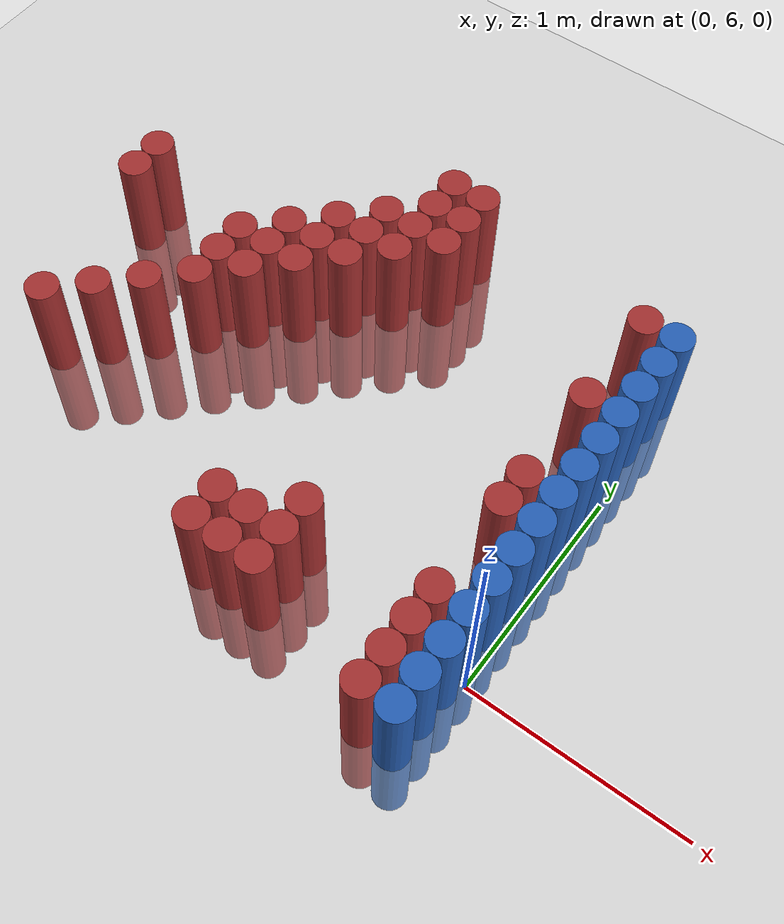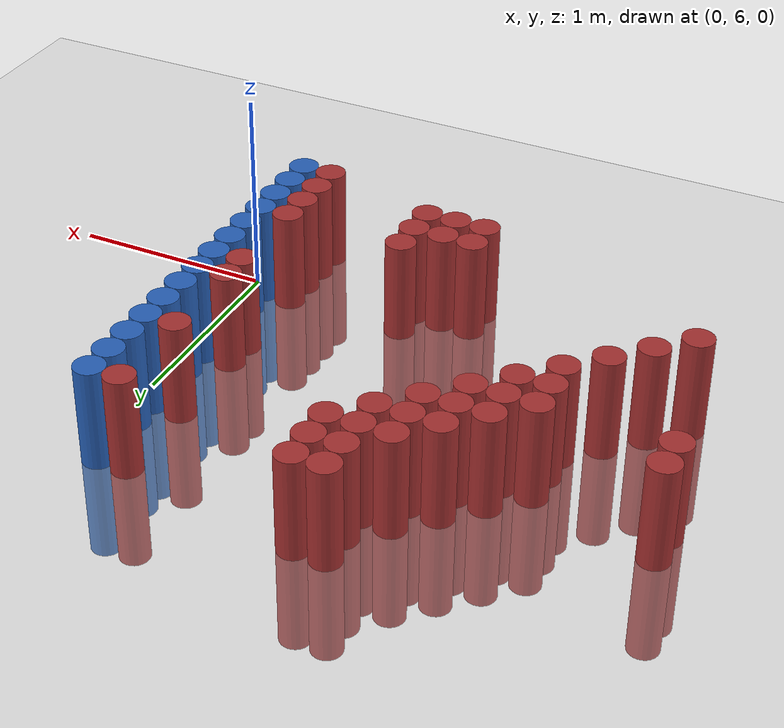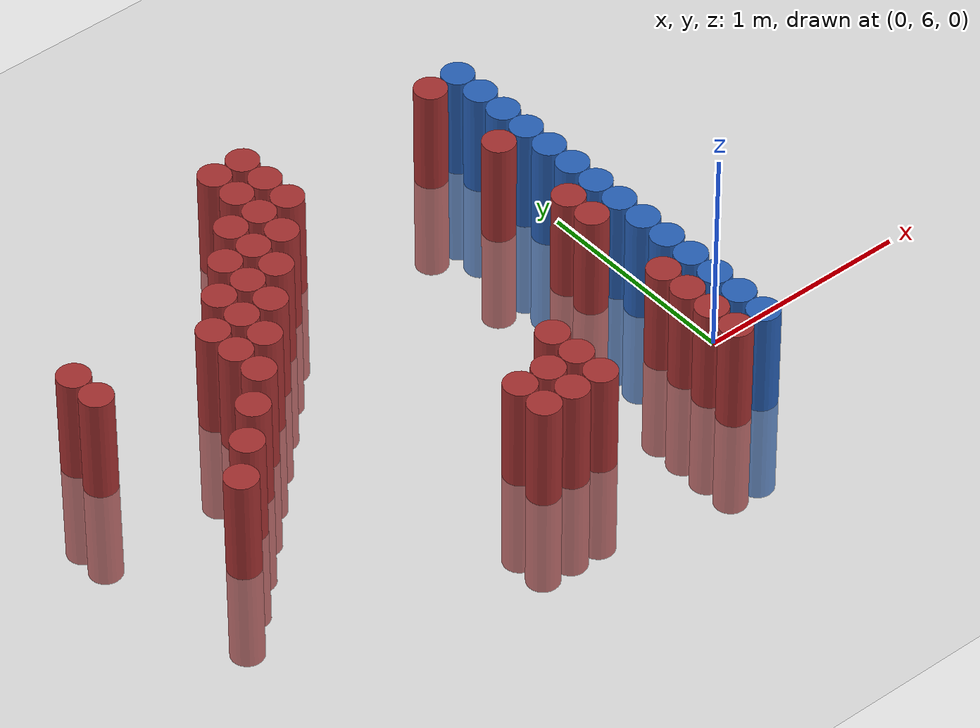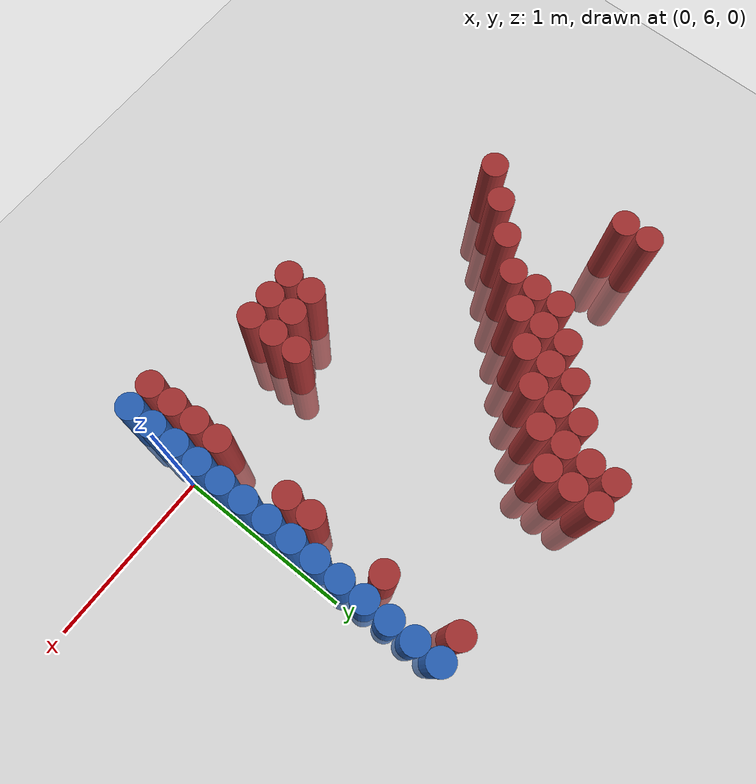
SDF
<sdf version="1.6">
 <world name="default">
  <model name="ground_plane">
   <static>1</static>
   <link name="link">
    <collision name="collision">
     <geometry><plane><normal>0 0 1</normal><size>100 100</size></plane></geometry>
     <surface><friction><ode><mu>100</mu><mu2>50</mu2></ode></friction></surface>
    </collision>
    <visual name="visual">
     <cast_shadows>0</cast_shadows>
     <geometry><plane><normal>0 0 1</normal><size>100 100</size></plane></geometry>
     <material>
      <script><uri>file://media/materials/scripts/gazebo.material</uri><name>Gazebo/Grey</name></script>
     </material>
    </visual>
   </link>
  </model>
  <model name="unit_cylinder_155">
   <static>1</static>
   <pose>-2.475000 6.975000 0.000000 0.000000 0.000000 0.000000</pose>
   <link name="link">
    <inertial>
     <mass>1</mass>
     <inertia><ixx>0.145833</ixx><ixy>0</ixy><ixz>0</ixz><iyy>0.145833</iyy><iyz>0</iyz><izz>0.125</izz></inertia>
    </inertial>
    <collision name="collision">
     <geometry><cylinder><radius>0.075000</radius><length>1</length></cylinder></geometry>
    </collision>
    <visual name="visual">
     <geometry><cylinder><radius>0.075000</radius><length>1</length></cylinder></geometry>
     <material>
      <ambient>0.648000 0.192000 0.192000 1</ambient>
      <diffuse>0.648000 0.192000 0.192000 1</diffuse>
     </material>
     <material>
      <script><name>Gazebo/Grey</name><uri>file://media/materials/scripts/gazebo.material</uri></script>
     </material>
    </visual>
   </link>
  </model>
  <model name="unit_cylinder_156">
   <static>1</static>
   <pose>-2.475000 7.125000 0.000000 0.000000 0.000000 0.000000</pose>
   <link name="link">
    <inertial>
     <mass>1</mass>
     <inertia><ixx>0.145833</ixx><ixy>0</ixy><ixz>0</ixz><iyy>0.145833</iyy><iyz>0</iyz><izz>0.125</izz></inertia>
    </inertial>
    <collision name="collision">
     <geometry><cylinder><radius>0.075000</radius><length>1</length></cylinder></geometry>
    </collision>
    <visual name="visual">
     <geometry><cylinder><radius>0.075000</radius><length>1</length></cylinder></geometry>
     <material>
      <ambient>0.648000 0.192000 0.192000 1</ambient>
      <diffuse>0.648000 0.192000 0.192000 1</diffuse>
     </material>
     <material>
      <script><name>Gazebo/Grey</name><uri>file://media/materials/scripts/gazebo.material</uri></script>
     </material>
    </visual>
   </link>
  </model>
  <model name="unit_cylinder_157">
   <static>1</static>
   <pose>-2.325000 6.225000 0.000000 0.000000 0.000000 0.000000</pose>
   <link name="link">
    <inertial>
     <mass>1</mass>
     <inertia><ixx>0.145833</ixx><ixy>0</ixy><ixz>0</ixz><iyy>0.145833</iyy><iyz>0</iyz><izz>0.125</izz></inertia>
    </inertial>
    <collision name="collision">
     <geometry><cylinder><radius>0.075000</radius><length>1</length></cylinder></geometry>
    </collision>
    <visual name="visual">
     <geometry><cylinder><radius>0.075000</radius><length>1</length></cylinder></geometry>
     <material>
      <ambient>0.648000 0.192000 0.192000 1</ambient>
      <diffuse>0.648000 0.192000 0.192000 1</diffuse>
     </material>
     <material>
      <script><name>Gazebo/Grey</name><uri>file://media/materials/scripts/gazebo.material</uri></script>
     </material>
    </visual>
   </link>
  </model>
  <model name="unit_cylinder_158">
   <static>1</static>
   <pose>-2.175000 6.375000 0.000000 0.000000 0.000000 0.000000</pose>
   <link name="link">
    <inertial>
     <mass>1</mass>
     <inertia><ixx>0.145833</ixx><ixy>0</ixy><ixz>0</ixz><iyy>0.145833</iyy><iyz>0</iyz><izz>0.125</izz></inertia>
    </inertial>
    <collision name="collision">
     <geometry><cylinder><radius>0.075000</radius><length>1</length></cylinder></geometry>
    </collision>
    <visual name="visual">
     <geometry><cylinder><radius>0.075000</radius><length>1</length></cylinder></geometry>
     <material>
      <ambient>0.648000 0.192000 0.192000 1</ambient>
      <diffuse>0.648000 0.192000 0.192000 1</diffuse>
     </material>
     <material>
      <script><name>Gazebo/Grey</name><uri>file://media/materials/scripts/gazebo.material</uri></script>
     </material>
    </visual>
   </link>
  </model>
  <model name="unit_cylinder_159">
   <static>1</static>
   <pose>-2.025000 6.525000 0.000000 0.000000 0.000000 0.000000</pose>
   <link name="link">
    <inertial>
     <mass>1</mass>
     <inertia><ixx>0.145833</ixx><ixy>0</ixy><ixz>0</ixz><iyy>0.145833</iyy><iyz>0</iyz><izz>0.125</izz></inertia>
    </inertial>
    <collision name="collision">
     <geometry><cylinder><radius>0.075000</radius><length>1</length></cylinder></geometry>
    </collision>
    <visual name="visual">
     <geometry><cylinder><radius>0.075000</radius><length>1</length></cylinder></geometry>
     <material>
      <ambient>0.648000 0.192000 0.192000 1</ambient>
      <diffuse>0.648000 0.192000 0.192000 1</diffuse>
     </material>
     <material>
      <script><name>Gazebo/Grey</name><uri>file://media/materials/scripts/gazebo.material</uri></script>
     </material>
    </visual>
   </link>
  </model>
  <model name="unit_cylinder_160">
   <static>1</static>
   <pose>-1.875000 6.675000 0.000000 0.000000 0.000000 0.000000</pose>
   <link name="link">
    <inertial>
     <mass>1</mass>
     <inertia><ixx>0.145833</ixx><ixy>0</ixy><ixz>0</ixz><iyy>0.145833</iyy><iyz>0</iyz><izz>0.125</izz></inertia>
    </inertial>
    <collision name="collision">
     <geometry><cylinder><radius>0.075000</radius><length>1</length></cylinder></geometry>
    </collision>
    <visual name="visual">
     <geometry><cylinder><radius>0.075000</radius><length>1</length></cylinder></geometry>
     <material>
      <ambient>0.648000 0.192000 0.192000 1</ambient>
      <diffuse>0.648000 0.192000 0.192000 1</diffuse>
     </material>
     <material>
      <script><name>Gazebo/Grey</name><uri>file://media/materials/scripts/gazebo.material</uri></script>
     </material>
    </visual>
   </link>
  </model>
  <model name="unit_cylinder_161">
   <static>1</static>
   <pose>-1.875000 6.825000 0.000000 0.000000 0.000000 0.000000</pose>
   <link name="link">
    <inertial>
     <mass>1</mass>
     <inertia><ixx>0.145833</ixx><ixy>0</ixy><ixz>0</ixz><iyy>0.145833</iyy><iyz>0</iyz><izz>0.125</izz></inertia>
    </inertial>
    <collision name="collision">
     <geometry><cylinder><radius>0.075000</radius><length>1</length></cylinder></geometry>
    </collision>
    <visual name="visual">
     <geometry><cylinder><radius>0.075000</radius><length>1</length></cylinder></geometry>
     <material>
      <ambient>0.648000 0.192000 0.192000 1</ambient>
      <diffuse>0.648000 0.192000 0.192000 1</diffuse>
     </material>
     <material>
      <script><name>Gazebo/Grey</name><uri>file://media/materials/scripts/gazebo.material</uri></script>
     </material>
    </visual>
   </link>
  </model>
  <model name="unit_cylinder_162">
   <static>1</static>
   <pose>-1.875000 6.975000 0.000000 0.000000 0.000000 0.000000</pose>
   <link name="link">
    <inertial>
     <mass>1</mass>
     <inertia><ixx>0.145833</ixx><ixy>0</ixy><ixz>0</ixz><iyy>0.145833</iyy><iyz>0</iyz><izz>0.125</izz></inertia>
    </inertial>
    <collision name="collision">
     <geometry><cylinder><radius>0.075000</radius><length>1</length></cylinder></geometry>
    </collision>
    <visual name="visual">
     <geometry><cylinder><radius>0.075000</radius><length>1</length></cylinder></geometry>
     <material>
      <ambient>0.648000 0.192000 0.192000 1</ambient>
      <diffuse>0.648000 0.192000 0.192000 1</diffuse>
     </material>
     <material>
      <script><name>Gazebo/Grey</name><uri>file://media/materials/scripts/gazebo.material</uri></script>
     </material>
    </visual>
   </link>
  </model>
  <model name="unit_cylinder_163">
   <static>1</static>
   <pose>-1.725000 6.825000 0.000000 0.000000 0.000000 0.000000</pose>
   <link name="link">
    <inertial>
     <mass>1</mass>
     <inertia><ixx>0.145833</ixx><ixy>0</ixy><ixz>0</ixz><iyy>0.145833</iyy><iyz>0</iyz><izz>0.125</izz></inertia>
    </inertial>
    <collision name="collision">
     <geometry><cylinder><radius>0.075000</radius><length>1</length></cylinder></geometry>
    </collision>
    <visual name="visual">
     <geometry><cylinder><radius>0.075000</radius><length>1</length></cylinder></geometry>
     <material>
      <ambient>0.648000 0.192000 0.192000 1</ambient>
      <diffuse>0.648000 0.192000 0.192000 1</diffuse>
     </material>
     <material>
      <script><name>Gazebo/Grey</name><uri>file://media/materials/scripts/gazebo.material</uri></script>
     </material>
    </visual>
   </link>
  </model>
  <model name="unit_cylinder_164">
   <static>1</static>
   <pose>-1.725000 6.975000 0.000000 0.000000 0.000000 0.000000</pose>
   <link name="link">
    <inertial>
     <mass>1</mass>
     <inertia><ixx>0.145833</ixx><ixy>0</ixy><ixz>0</ixz><iyy>0.145833</iyy><iyz>0</iyz><izz>0.125</izz></inertia>
    </inertial>
    <collision name="collision">
     <geometry><cylinder><radius>0.075000</radius><length>1</length></cylinder></geometry>
    </collision>
    <visual name="visual">
     <geometry><cylinder><radius>0.075000</radius><length>1</length></cylinder></geometry>
     <material>
      <ambient>0.648000 0.192000 0.192000 1</ambient>
      <diffuse>0.648000 0.192000 0.192000 1</diffuse>
     </material>
     <material>
      <script><name>Gazebo/Grey</name><uri>file://media/materials/scripts/gazebo.material</uri></script>
     </material>
    </visual>
   </link>
  </model>
  <model name="unit_cylinder_165">
   <static>1</static>
   <pose>-1.725000 7.125000 0.000000 0.000000 0.000000 0.000000</pose>
   <link name="link">
    <inertial>
     <mass>1</mass>
     <inertia><ixx>0.145833</ixx><ixy>0</ixy><ixz>0</ixz><iyy>0.145833</iyy><iyz>0</iyz><izz>0.125</izz></inertia>
    </inertial>
    <collision name="collision">
     <geometry><cylinder><radius>0.075000</radius><length>1</length></cylinder></geometry>
    </collision>
    <visual name="visual">
     <geometry><cylinder><radius>0.075000</radius><length>1</length></cylinder></geometry>
     <material>
      <ambient>0.648000 0.192000 0.192000 1</ambient>
      <diffuse>0.648000 0.192000 0.192000 1</diffuse>
     </material>
     <material>
      <script><name>Gazebo/Grey</name><uri>file://media/materials/scripts/gazebo.material</uri></script>
     </material>
    </visual>
   </link>
  </model>
  <model name="unit_cylinder_166">
   <static>1</static>
   <pose>-1.575000 6.975000 0.000000 0.000000 0.000000 0.000000</pose>
   <link name="link">
    <inertial>
     <mass>1</mass>
     <inertia><ixx>0.145833</ixx><ixy>0</ixy><ixz>0</ixz><iyy>0.145833</iyy><iyz>0</iyz><izz>0.125</izz></inertia>
    </inertial>
    <collision name="collision">
     <geometry><cylinder><radius>0.075000</radius><length>1</length></cylinder></geometry>
    </collision>
    <visual name="visual">
     <geometry><cylinder><radius>0.075000</radius><length>1</length></cylinder></geometry>
     <material>
      <ambient>0.648000 0.192000 0.192000 1</ambient>
      <diffuse>0.648000 0.192000 0.192000 1</diffuse>
     </material>
     <material>
      <script><name>Gazebo/Grey</name><uri>file://media/materials/scripts/gazebo.material</uri></script>
     </material>
    </visual>
   </link>
  </model>
  <model name="unit_cylinder_167">
   <static>1</static>
   <pose>-1.575000 7.125000 0.000000 0.000000 0.000000 0.000000</pose>
   <link name="link">
    <inertial>
     <mass>1</mass>
     <inertia><ixx>0.145833</ixx><ixy>0</ixy><ixz>0</ixz><iyy>0.145833</iyy><iyz>0</iyz><izz>0.125</izz></inertia>
    </inertial>
    <collision name="collision">
     <geometry><cylinder><radius>0.075000</radius><length>1</length></cylinder></geometry>
    </collision>
    <visual name="visual">
     <geometry><cylinder><radius>0.075000</radius><length>1</length></cylinder></geometry>
     <material>
      <ambient>0.648000 0.192000 0.192000 1</ambient>
      <diffuse>0.648000 0.192000 0.192000 1</diffuse>
     </material>
     <material>
      <script><name>Gazebo/Grey</name><uri>file://media/materials/scripts/gazebo.material</uri></script>
     </material>
    </visual>
   </link>
  </model>
  <model name="unit_cylinder_168">
   <static>1</static>
   <pose>-1.575000 7.275000 0.000000 0.000000 0.000000 0.000000</pose>
   <link name="link">
    <inertial>
     <mass>1</mass>
     <inertia><ixx>0.145833</ixx><ixy>0</ixy><ixz>0</ixz><iyy>0.145833</iyy><iyz>0</iyz><izz>0.125</izz></inertia>
    </inertial>
    <collision name="collision">
     <geometry><cylinder><radius>0.075000</radius><length>1</length></cylinder></geometry>
    </collision>
    <visual name="visual">
     <geometry><cylinder><radius>0.075000</radius><length>1</length></cylinder></geometry>
     <material>
      <ambient>0.648000 0.192000 0.192000 1</ambient>
      <diffuse>0.648000 0.192000 0.192000 1</diffuse>
     </material>
     <material>
      <script><name>Gazebo/Grey</name><uri>file://media/materials/scripts/gazebo.material</uri></script>
     </material>
    </visual>
   </link>
  </model>
  <model name="unit_cylinder_169">
   <static>1</static>
   <pose>-1.425000 7.125000 0.000000 0.000000 0.000000 0.000000</pose>
   <link name="link">
    <inertial>
     <mass>1</mass>
     <inertia><ixx>0.145833</ixx><ixy>0</ixy><ixz>0</ixz><iyy>0.145833</iyy><iyz>0</iyz><izz>0.125</izz></inertia>
    </inertial>
    <collision name="collision">
     <geometry><cylinder><radius>0.075000</radius><length>1</length></cylinder></geometry>
    </collision>
    <visual name="visual">
     <geometry><cylinder><radius>0.075000</radius><length>1</length></cylinder></geometry>
     <material>
      <ambient>0.648000 0.192000 0.192000 1</ambient>
      <diffuse>0.648000 0.192000 0.192000 1</diffuse>
     </material>
     <material>
      <script><name>Gazebo/Grey</name><uri>file://media/materials/scripts/gazebo.material</uri></script>
     </material>
    </visual>
   </link>
  </model>
  <model name="unit_cylinder_170">
   <static>1</static>
   <pose>-1.425000 7.275000 0.000000 0.000000 0.000000 0.000000</pose>
   <link name="link">
    <inertial>
     <mass>1</mass>
     <inertia><ixx>0.145833</ixx><ixy>0</ixy><ixz>0</ixz><iyy>0.145833</iyy><iyz>0</iyz><izz>0.125</izz></inertia>
    </inertial>
    <collision name="collision">
     <geometry><cylinder><radius>0.075000</radius><length>1</length></cylinder></geometry>
    </collision>
    <visual name="visual">
     <geometry><cylinder><radius>0.075000</radius><length>1</length></cylinder></geometry>
     <material>
      <ambient>0.648000 0.192000 0.192000 1</ambient>
      <diffuse>0.648000 0.192000 0.192000 1</diffuse>
     </material>
     <material>
      <script><name>Gazebo/Grey</name><uri>file://media/materials/scripts/gazebo.material</uri></script>
     </material>
    </visual>
   </link>
  </model>
  <model name="unit_cylinder_171">
   <static>1</static>
   <pose>-1.425000 7.425000 0.000000 0.000000 0.000000 0.000000</pose>
   <link name="link">
    <inertial>
     <mass>1</mass>
     <inertia><ixx>0.145833</ixx><ixy>0</ixy><ixz>0</ixz><iyy>0.145833</iyy><iyz>0</iyz><izz>0.125</izz></inertia>
    </inertial>
    <collision name="collision">
     <geometry><cylinder><radius>0.075000</radius><length>1</length></cylinder></geometry>
    </collision>
    <visual name="visual">
     <geometry><cylinder><radius>0.075000</radius><length>1</length></cylinder></geometry>
     <material>
      <ambient>0.648000 0.192000 0.192000 1</ambient>
      <diffuse>0.648000 0.192000 0.192000 1</diffuse>
     </material>
     <material>
      <script><name>Gazebo/Grey</name><uri>file://media/materials/scripts/gazebo.material</uri></script>
     </material>
    </visual>
   </link>
  </model>
  <model name="unit_cylinder_175">
   <static>1</static>
   <pose>-1.275000 7.275000 0.000000 0.000000 0.000000 0.000000</pose>
   <link name="link">
    <inertial>
     <mass>1</mass>
     <inertia><ixx>0.145833</ixx><ixy>0</ixy><ixz>0</ixz><iyy>0.145833</iyy><iyz>0</iyz><izz>0.125</izz></inertia>
    </inertial>
    <collision name="collision">
     <geometry><cylinder><radius>0.075000</radius><length>1</length></cylinder></geometry>
    </collision>
    <visual name="visual">
     <geometry><cylinder><radius>0.075000</radius><length>1</length></cylinder></geometry>
     <material>
      <ambient>0.648000 0.192000 0.192000 1</ambient>
      <diffuse>0.648000 0.192000 0.192000 1</diffuse>
     </material>
     <material>
      <script><name>Gazebo/Grey</name><uri>file://media/materials/scripts/gazebo.material</uri></script>
     </material>
    </visual>
   </link>
  </model>
  <model name="unit_cylinder_176">
   <static>1</static>
   <pose>-1.275000 7.425000 0.000000 0.000000 0.000000 0.000000</pose>
   <link name="link">
    <inertial>
     <mass>1</mass>
     <inertia><ixx>0.145833</ixx><ixy>0</ixy><ixz>0</ixz><iyy>0.145833</iyy><iyz>0</iyz><izz>0.125</izz></inertia>
    </inertial>
    <collision name="collision">
     <geometry><cylinder><radius>0.075000</radius><length>1</length></cylinder></geometry>
    </collision>
    <visual name="visual">
     <geometry><cylinder><radius>0.075000</radius><length>1</length></cylinder></geometry>
     <material>
      <ambient>0.648000 0.192000 0.192000 1</ambient>
      <diffuse>0.648000 0.192000 0.192000 1</diffuse>
     </material>
     <material>
      <script><name>Gazebo/Grey</name><uri>file://media/materials/scripts/gazebo.material</uri></script>
     </material>
    </visual>
   </link>
  </model>
  <model name="unit_cylinder_177">
   <static>1</static>
   <pose>-1.275000 7.575000 0.000000 0.000000 0.000000 0.000000</pose>
   <link name="link">
    <inertial>
     <mass>1</mass>
     <inertia><ixx>0.145833</ixx><ixy>0</ixy><ixz>0</ixz><iyy>0.145833</iyy><iyz>0</iyz><izz>0.125</izz></inertia>
    </inertial>
    <collision name="collision">
     <geometry><cylinder><radius>0.075000</radius><length>1</length></cylinder></geometry>
    </collision>
    <visual name="visual">
     <geometry><cylinder><radius>0.075000</radius><length>1</length></cylinder></geometry>
     <material>
      <ambient>0.648000 0.192000 0.192000 1</ambient>
      <diffuse>0.648000 0.192000 0.192000 1</diffuse>
     </material>
     <material>
      <script><name>Gazebo/Grey</name><uri>file://media/materials/scripts/gazebo.material</uri></script>
     </material>
    </visual>
   </link>
  </model>
  <model name="unit_cylinder_178">
   <static>1</static>
   <pose>-1.275000 7.725000 0.000000 0.000000 0.000000 0.000000</pose>
   <link name="link">
    <inertial>
     <mass>1</mass>
     <inertia><ixx>0.145833</ixx><ixy>0</ixy><ixz>0</ixz><iyy>0.145833</iyy><iyz>0</iyz><izz>0.125</izz></inertia>
    </inertial>
    <collision name="collision">
     <geometry><cylinder><radius>0.075000</radius><length>1</length></cylinder></geometry>
    </collision>
    <visual name="visual">
     <geometry><cylinder><radius>0.075000</radius><length>1</length></cylinder></geometry>
     <material>
      <ambient>0.648000 0.192000 0.192000 1</ambient>
      <diffuse>0.648000 0.192000 0.192000 1</diffuse>
     </material>
     <material>
      <script><name>Gazebo/Grey</name><uri>file://media/materials/scripts/gazebo.material</uri></script>
     </material>
    </visual>
   </link>
  </model>
  <model name="unit_cylinder_182">
   <static>1</static>
   <pose>-1.125000 5.775000 0.000000 0.000000 0.000000 0.000000</pose>
   <link name="link">
    <inertial>
     <mass>1</mass>
     <inertia><ixx>0.145833</ixx><ixy>0</ixy><ixz>0</ixz><iyy>0.145833</iyy><iyz>0</iyz><izz>0.125</izz></inertia>
    </inertial>
    <collision name="collision">
     <geometry><cylinder><radius>0.075000</radius><length>1</length></cylinder></geometry>
    </collision>
    <visual name="visual">
     <geometry><cylinder><radius>0.075000</radius><length>1</length></cylinder></geometry>
     <material>
      <ambient>0.648000 0.192000 0.192000 1</ambient>
      <diffuse>0.648000 0.192000 0.192000 1</diffuse>
     </material>
     <material>
      <script><name>Gazebo/Grey</name><uri>file://media/materials/scripts/gazebo.material</uri></script>
     </material>
    </visual>
   </link>
  </model>
  <model name="unit_cylinder_183">
   <static>1</static>
   <pose>-1.125000 5.925000 0.000000 0.000000 0.000000 0.000000</pose>
   <link name="link">
    <inertial>
     <mass>1</mass>
     <inertia><ixx>0.145833</ixx><ixy>0</ixy><ixz>0</ixz><iyy>0.145833</iyy><iyz>0</iyz><izz>0.125</izz></inertia>
    </inertial>
    <collision name="collision">
     <geometry><cylinder><radius>0.075000</radius><length>1</length></cylinder></geometry>
    </collision>
    <visual name="visual">
     <geometry><cylinder><radius>0.075000</radius><length>1</length></cylinder></geometry>
     <material>
      <ambient>0.648000 0.192000 0.192000 1</ambient>
      <diffuse>0.648000 0.192000 0.192000 1</diffuse>
     </material>
     <material>
      <script><name>Gazebo/Grey</name><uri>file://media/materials/scripts/gazebo.material</uri></script>
     </material>
    </visual>
   </link>
  </model>
  <model name="unit_cylinder_184">
   <static>1</static>
   <pose>-1.125000 7.425000 0.000000 0.000000 0.000000 0.000000</pose>
   <link name="link">
    <inertial>
     <mass>1</mass>
     <inertia><ixx>0.145833</ixx><ixy>0</ixy><ixz>0</ixz><iyy>0.145833</iyy><iyz>0</iyz><izz>0.125</izz></inertia>
    </inertial>
    <collision name="collision">
     <geometry><cylinder><radius>0.075000</radius><length>1</length></cylinder></geometry>
    </collision>
    <visual name="visual">
     <geometry><cylinder><radius>0.075000</radius><length>1</length></cylinder></geometry>
     <material>
      <ambient>0.648000 0.192000 0.192000 1</ambient>
      <diffuse>0.648000 0.192000 0.192000 1</diffuse>
     </material>
     <material>
      <script><name>Gazebo/Grey</name><uri>file://media/materials/scripts/gazebo.material</uri></script>
     </material>
    </visual>
   </link>
  </model>
  <model name="unit_cylinder_185">
   <static>1</static>
   <pose>-1.125000 7.575000 0.000000 0.000000 0.000000 0.000000</pose>
   <link name="link">
    <inertial>
     <mass>1</mass>
     <inertia><ixx>0.145833</ixx><ixy>0</ixy><ixz>0</ixz><iyy>0.145833</iyy><iyz>0</iyz><izz>0.125</izz></inertia>
    </inertial>
    <collision name="collision">
     <geometry><cylinder><radius>0.075000</radius><length>1</length></cylinder></geometry>
    </collision>
    <visual name="visual">
     <geometry><cylinder><radius>0.075000</radius><length>1</length></cylinder></geometry>
     <material>
      <ambient>0.648000 0.192000 0.192000 1</ambient>
      <diffuse>0.648000 0.192000 0.192000 1</diffuse>
     </material>
     <material>
      <script><name>Gazebo/Grey</name><uri>file://media/materials/scripts/gazebo.material</uri></script>
     </material>
    </visual>
   </link>
  </model>
  <model name="unit_cylinder_186">
   <static>1</static>
   <pose>-1.125000 7.725000 0.000000 0.000000 0.000000 0.000000</pose>
   <link name="link">
    <inertial>
     <mass>1</mass>
     <inertia><ixx>0.145833</ixx><ixy>0</ixy><ixz>0</ixz><iyy>0.145833</iyy><iyz>0</iyz><izz>0.125</izz></inertia>
    </inertial>
    <collision name="collision">
     <geometry><cylinder><radius>0.075000</radius><length>1</length></cylinder></geometry>
    </collision>
    <visual name="visual">
     <geometry><cylinder><radius>0.075000</radius><length>1</length></cylinder></geometry>
     <material>
      <ambient>0.648000 0.192000 0.192000 1</ambient>
      <diffuse>0.648000 0.192000 0.192000 1</diffuse>
     </material>
     <material>
      <script><name>Gazebo/Grey</name><uri>file://media/materials/scripts/gazebo.material</uri></script>
     </material>
    </visual>
   </link>
  </model>
  <model name="unit_cylinder_191">
   <static>1</static>
   <pose>-0.975000 5.775000 0.000000 0.000000 0.000000 0.000000</pose>
   <link name="link">
    <inertial>
     <mass>1</mass>
     <inertia><ixx>0.145833</ixx><ixy>0</ixy><ixz>0</ixz><iyy>0.145833</iyy><iyz>0</iyz><izz>0.125</izz></inertia>
    </inertial>
    <collision name="collision">
     <geometry><cylinder><radius>0.075000</radius><length>1</length></cylinder></geometry>
    </collision>
    <visual name="visual">
     <geometry><cylinder><radius>0.075000</radius><length>1</length></cylinder></geometry>
     <material>
      <ambient>0.648000 0.192000 0.192000 1</ambient>
      <diffuse>0.648000 0.192000 0.192000 1</diffuse>
     </material>
     <material>
      <script><name>Gazebo/Grey</name><uri>file://media/materials/scripts/gazebo.material</uri></script>
     </material>
    </visual>
   </link>
  </model>
  <model name="unit_cylinder_192">
   <static>1</static>
   <pose>-0.975000 5.925000 0.000000 0.000000 0.000000 0.000000</pose>
   <link name="link">
    <inertial>
     <mass>1</mass>
     <inertia><ixx>0.145833</ixx><ixy>0</ixy><ixz>0</ixz><iyy>0.145833</iyy><iyz>0</iyz><izz>0.125</izz></inertia>
    </inertial>
    <collision name="collision">
     <geometry><cylinder><radius>0.075000</radius><length>1</length></cylinder></geometry>
    </collision>
    <visual name="visual">
     <geometry><cylinder><radius>0.075000</radius><length>1</length></cylinder></geometry>
     <material>
      <ambient>0.648000 0.192000 0.192000 1</ambient>
      <diffuse>0.648000 0.192000 0.192000 1</diffuse>
     </material>
     <material>
      <script><name>Gazebo/Grey</name><uri>file://media/materials/scripts/gazebo.material</uri></script>
     </material>
    </visual>
   </link>
  </model>
  <model name="unit_cylinder_197">
   <static>1</static>
   <pose>-0.825000 5.775000 0.000000 0.000000 0.000000 0.000000</pose>
   <link name="link">
    <inertial>
     <mass>1</mass>
     <inertia><ixx>0.145833</ixx><ixy>0</ixy><ixz>0</ixz><iyy>0.145833</iyy><iyz>0</iyz><izz>0.125</izz></inertia>
    </inertial>
    <collision name="collision">
     <geometry><cylinder><radius>0.075000</radius><length>1</length></cylinder></geometry>
    </collision>
    <visual name="visual">
     <geometry><cylinder><radius>0.075000</radius><length>1</length></cylinder></geometry>
     <material>
      <ambient>0.648000 0.192000 0.192000 1</ambient>
      <diffuse>0.648000 0.192000 0.192000 1</diffuse>
     </material>
     <material>
      <script><name>Gazebo/Grey</name><uri>file://media/materials/scripts/gazebo.material</uri></script>
     </material>
    </visual>
   </link>
  </model>
  <model name="unit_cylinder_198">
   <static>1</static>
   <pose>-0.825000 5.925000 0.000000 0.000000 0.000000 0.000000</pose>
   <link name="link">
    <inertial>
     <mass>1</mass>
     <inertia><ixx>0.145833</ixx><ixy>0</ixy><ixz>0</ixz><iyy>0.145833</iyy><iyz>0</iyz><izz>0.125</izz></inertia>
    </inertial>
    <collision name="collision">
     <geometry><cylinder><radius>0.075000</radius><length>1</length></cylinder></geometry>
    </collision>
    <visual name="visual">
     <geometry><cylinder><radius>0.075000</radius><length>1</length></cylinder></geometry>
     <material>
      <ambient>0.648000 0.192000 0.192000 1</ambient>
      <diffuse>0.648000 0.192000 0.192000 1</diffuse>
     </material>
     <material>
      <script><name>Gazebo/Grey</name><uri>file://media/materials/scripts/gazebo.material</uri></script>
     </material>
    </visual>
   </link>
  </model>
  <model name="unit_cylinder_199">
   <static>1</static>
   <pose>-0.825000 6.075000 0.000000 0.000000 0.000000 0.000000</pose>
   <link name="link">
    <inertial>
     <mass>1</mass>
     <inertia><ixx>0.145833</ixx><ixy>0</ixy><ixz>0</ixz><iyy>0.145833</iyy><iyz>0</iyz><izz>0.125</izz></inertia>
    </inertial>
    <collision name="collision">
     <geometry><cylinder><radius>0.075000</radius><length>1</length></cylinder></geometry>
    </collision>
    <visual name="visual">
     <geometry><cylinder><radius>0.075000</radius><length>1</length></cylinder></geometry>
     <material>
      <ambient>0.648000 0.192000 0.192000 1</ambient>
      <diffuse>0.648000 0.192000 0.192000 1</diffuse>
     </material>
     <material>
      <script><name>Gazebo/Grey</name><uri>file://media/materials/scripts/gazebo.material</uri></script>
     </material>
    </visual>
   </link>
  </model>
  <model name="unit_cylinder_222">
   <static>1</static>
   <pose>-0.225000 5.625000 0.000000 0.000000 0.000000 0.000000</pose>
   <link name="link">
    <inertial>
     <mass>1</mass>
     <inertia><ixx>0.145833</ixx><ixy>0</ixy><ixz>0</ixz><iyy>0.145833</iyy><iyz>0</iyz><izz>0.125</izz></inertia>
    </inertial>
    <collision name="collision">
     <geometry><cylinder><radius>0.075000</radius><length>1</length></cylinder></geometry>
    </collision>
    <visual name="visual">
     <geometry><cylinder><radius>0.075000</radius><length>1</length></cylinder></geometry>
     <material>
      <ambient>0.648000 0.192000 0.192000 1</ambient>
      <diffuse>0.648000 0.192000 0.192000 1</diffuse>
     </material>
     <material>
      <script><name>Gazebo/Grey</name><uri>file://media/materials/scripts/gazebo.material</uri></script>
     </material>
    </visual>
   </link>
  </model>
  <model name="unit_cylinder_223">
   <static>1</static>
   <pose>-0.225000 5.775000 0.000000 0.000000 0.000000 0.000000</pose>
   <link name="link">
    <inertial>
     <mass>1</mass>
     <inertia><ixx>0.145833</ixx><ixy>0</ixy><ixz>0</ixz><iyy>0.145833</iyy><iyz>0</iyz><izz>0.125</izz></inertia>
    </inertial>
    <collision name="collision">
     <geometry><cylinder><radius>0.075000</radius><length>1</length></cylinder></geometry>
    </collision>
    <visual name="visual">
     <geometry><cylinder><radius>0.075000</radius><length>1</length></cylinder></geometry>
     <material>
      <ambient>0.648000 0.192000 0.192000 1</ambient>
      <diffuse>0.648000 0.192000 0.192000 1</diffuse>
     </material>
     <material>
      <script><name>Gazebo/Grey</name><uri>file://media/materials/scripts/gazebo.material</uri></script>
     </material>
    </visual>
   </link>
  </model>
  <model name="unit_cylinder_224">
   <static>1</static>
   <pose>-0.225000 5.925000 0.000000 0.000000 0.000000 0.000000</pose>
   <link name="link">
    <inertial>
     <mass>1</mass>
     <inertia><ixx>0.145833</ixx><ixy>0</ixy><ixz>0</ixz><iyy>0.145833</iyy><iyz>0</iyz><izz>0.125</izz></inertia>
    </inertial>
    <collision name="collision">
     <geometry><cylinder><radius>0.075000</radius><length>1</length></cylinder></geometry>
    </collision>
    <visual name="visual">
     <geometry><cylinder><radius>0.075000</radius><length>1</length></cylinder></geometry>
     <material>
      <ambient>0.648000 0.192000 0.192000 1</ambient>
      <diffuse>0.648000 0.192000 0.192000 1</diffuse>
     </material>
     <material>
      <script><name>Gazebo/Grey</name><uri>file://media/materials/scripts/gazebo.material</uri></script>
     </material>
    </visual>
   </link>
  </model>
  <model name="unit_cylinder_225">
   <static>1</static>
   <pose>-0.225000 6.075000 0.000000 0.000000 0.000000 0.000000</pose>
   <link name="link">
    <inertial>
     <mass>1</mass>
     <inertia><ixx>0.145833</ixx><ixy>0</ixy><ixz>0</ixz><iyy>0.145833</iyy><iyz>0</iyz><izz>0.125</izz></inertia>
    </inertial>
    <collision name="collision">
     <geometry><cylinder><radius>0.075000</radius><length>1</length></cylinder></geometry>
    </collision>
    <visual name="visual">
     <geometry><cylinder><radius>0.075000</radius><length>1</length></cylinder></geometry>
     <material>
      <ambient>0.648000 0.192000 0.192000 1</ambient>
      <diffuse>0.648000 0.192000 0.192000 1</diffuse>
     </material>
     <material>
      <script><name>Gazebo/Grey</name><uri>file://media/materials/scripts/gazebo.material</uri></script>
     </material>
    </visual>
   </link>
  </model>
  <model name="unit_cylinder_226">
   <static>1</static>
   <pose>-0.225000 6.525000 0.000000 0.000000 0.000000 0.000000</pose>
   <link name="link">
    <inertial>
     <mass>1</mass>
     <inertia><ixx>0.145833</ixx><ixy>0</ixy><ixz>0</ixz><iyy>0.145833</iyy><iyz>0</iyz><izz>0.125</izz></inertia>
    </inertial>
    <collision name="collision">
     <geometry><cylinder><radius>0.075000</radius><length>1</length></cylinder></geometry>
    </collision>
    <visual name="visual">
     <geometry><cylinder><radius>0.075000</radius><length>1</length></cylinder></geometry>
     <material>
      <ambient>0.648000 0.192000 0.192000 1</ambient>
      <diffuse>0.648000 0.192000 0.192000 1</diffuse>
     </material>
     <material>
      <script><name>Gazebo/Grey</name><uri>file://media/materials/scripts/gazebo.material</uri></script>
     </material>
    </visual>
   </link>
  </model>
  <model name="unit_cylinder_227">
   <static>1</static>
   <pose>-0.225000 6.675000 0.000000 0.000000 0.000000 0.000000</pose>
   <link name="link">
    <inertial>
     <mass>1</mass>
     <inertia><ixx>0.145833</ixx><ixy>0</ixy><ixz>0</ixz><iyy>0.145833</iyy><iyz>0</iyz><izz>0.125</izz></inertia>
    </inertial>
    <collision name="collision">
     <geometry><cylinder><radius>0.075000</radius><length>1</length></cylinder></geometry>
    </collision>
    <visual name="visual">
     <geometry><cylinder><radius>0.075000</radius><length>1</length></cylinder></geometry>
     <material>
      <ambient>0.648000 0.192000 0.192000 1</ambient>
      <diffuse>0.648000 0.192000 0.192000 1</diffuse>
     </material>
     <material>
      <script><name>Gazebo/Grey</name><uri>file://media/materials/scripts/gazebo.material</uri></script>
     </material>
    </visual>
   </link>
  </model>
  <model name="unit_cylinder_228">
   <static>1</static>
   <pose>-0.225000 7.125000 0.000000 0.000000 0.000000 0.000000</pose>
   <link name="link">
    <inertial>
     <mass>1</mass>
     <inertia><ixx>0.145833</ixx><ixy>0</ixy><ixz>0</ixz><iyy>0.145833</iyy><iyz>0</iyz><izz>0.125</izz></inertia>
    </inertial>
    <collision name="collision">
     <geometry><cylinder><radius>0.075000</radius><length>1</length></cylinder></geometry>
    </collision>
    <visual name="visual">
     <geometry><cylinder><radius>0.075000</radius><length>1</length></cylinder></geometry>
     <material>
      <ambient>0.648000 0.192000 0.192000 1</ambient>
      <diffuse>0.648000 0.192000 0.192000 1</diffuse>
     </material>
     <material>
      <script><name>Gazebo/Grey</name><uri>file://media/materials/scripts/gazebo.material</uri></script>
     </material>
    </visual>
   </link>
  </model>
  <model name="unit_cylinder_229">
   <static>1</static>
   <pose>-0.225000 7.575000 0.000000 0.000000 0.000000 0.000000</pose>
   <link name="link">
    <inertial>
     <mass>1</mass>
     <inertia><ixx>0.145833</ixx><ixy>0</ixy><ixz>0</ixz><iyy>0.145833</iyy><iyz>0</iyz><izz>0.125</izz></inertia>
    </inertial>
    <collision name="collision">
     <geometry><cylinder><radius>0.075000</radius><length>1</length></cylinder></geometry>
    </collision>
    <visual name="visual">
     <geometry><cylinder><radius>0.075000</radius><length>1</length></cylinder></geometry>
     <material>
      <ambient>0.648000 0.192000 0.192000 1</ambient>
      <diffuse>0.648000 0.192000 0.192000 1</diffuse>
     </material>
     <material>
      <script><name>Gazebo/Grey</name><uri>file://media/materials/scripts/gazebo.material</uri></script>
     </material>
    </visual>
   </link>
  </model>
  <model name="unit_cylinder_238">
   <static>1</static>
   <pose>-0.075000 5.625000 0.000000 0.000000 0.000000 0.000000</pose>
   <link name="link">
    <inertial>
     <mass>1</mass>
     <inertia><ixx>0.145833</ixx><ixy>0</ixy><ixz>0</ixz><iyy>0.145833</iyy><iyz>0</iyz><izz>0.125</izz></inertia>
    </inertial>
    <collision name="collision">
     <geometry><cylinder><radius>0.075000</radius><length>1</length></cylinder></geometry>
    </collision>
    <visual name="visual">
     <geometry><cylinder><radius>0.075000</radius><length>1</length></cylinder></geometry>
     <material>
      <ambient>0.152000 0.379000 0.720000 1</ambient>
      <diffuse>0.152000 0.379000 0.720000 1</diffuse>
     </material>
     <material>
      <script><name>Gazebo/Grey</name><uri>file://media/materials/scripts/gazebo.material</uri></script>
     </material>
    </visual>
   </link>
  </model>
  <model name="unit_cylinder_239">
   <static>1</static>
   <pose>-0.075000 5.775000 0.000000 0.000000 0.000000 0.000000</pose>
   <link name="link">
    <inertial>
     <mass>1</mass>
     <inertia><ixx>0.145833</ixx><ixy>0</ixy><ixz>0</ixz><iyy>0.145833</iyy><iyz>0</iyz><izz>0.125</izz></inertia>
    </inertial>
    <collision name="collision">
     <geometry><cylinder><radius>0.075000</radius><length>1</length></cylinder></geometry>
    </collision>
    <visual name="visual">
     <geometry><cylinder><radius>0.075000</radius><length>1</length></cylinder></geometry>
     <material>
      <ambient>0.152000 0.379000 0.720000 1</ambient>
      <diffuse>0.152000 0.379000 0.720000 1</diffuse>
     </material>
     <material>
      <script><name>Gazebo/Grey</name><uri>file://media/materials/scripts/gazebo.material</uri></script>
     </material>
    </visual>
   </link>
  </model>
  <model name="unit_cylinder_240">
   <static>1</static>
   <pose>-0.075000 5.925000 0.000000 0.000000 0.000000 0.000000</pose>
   <link name="link">
    <inertial>
     <mass>1</mass>
     <inertia><ixx>0.145833</ixx><ixy>0</ixy><ixz>0</ixz><iyy>0.145833</iyy><iyz>0</iyz><izz>0.125</izz></inertia>
    </inertial>
    <collision name="collision">
     <geometry><cylinder><radius>0.075000</radius><length>1</length></cylinder></geometry>
    </collision>
    <visual name="visual">
     <geometry><cylinder><radius>0.075000</radius><length>1</length></cylinder></geometry>
     <material>
      <ambient>0.152000 0.379000 0.720000 1</ambient>
      <diffuse>0.152000 0.379000 0.720000 1</diffuse>
     </material>
     <material>
      <script><name>Gazebo/Grey</name><uri>file://media/materials/scripts/gazebo.material</uri></script>
     </material>
    </visual>
   </link>
  </model>
  <model name="unit_cylinder_241">
   <static>1</static>
   <pose>-0.075000 6.075000 0.000000 0.000000 0.000000 0.000000</pose>
   <link name="link">
    <inertial>
     <mass>1</mass>
     <inertia><ixx>0.145833</ixx><ixy>0</ixy><ixz>0</ixz><iyy>0.145833</iyy><iyz>0</iyz><izz>0.125</izz></inertia>
    </inertial>
    <collision name="collision">
     <geometry><cylinder><radius>0.075000</radius><length>1</length></cylinder></geometry>
    </collision>
    <visual name="visual">
     <geometry><cylinder><radius>0.075000</radius><length>1</length></cylinder></geometry>
     <material>
      <ambient>0.152000 0.379000 0.720000 1</ambient>
      <diffuse>0.152000 0.379000 0.720000 1</diffuse>
     </material>
     <material>
      <script><name>Gazebo/Grey</name><uri>file://media/materials/scripts/gazebo.material</uri></script>
     </material>
    </visual>
   </link>
  </model>
  <model name="unit_cylinder_242">
   <static>1</static>
   <pose>-0.075000 6.225000 0.000000 0.000000 0.000000 0.000000</pose>
   <link name="link">
    <inertial>
     <mass>1</mass>
     <inertia><ixx>0.145833</ixx><ixy>0</ixy><ixz>0</ixz><iyy>0.145833</iyy><iyz>0</iyz><izz>0.125</izz></inertia>
    </inertial>
    <collision name="collision">
     <geometry><cylinder><radius>0.075000</radius><length>1</length></cylinder></geometry>
    </collision>
    <visual name="visual">
     <geometry><cylinder><radius>0.075000</radius><length>1</length></cylinder></geometry>
     <material>
      <ambient>0.152000 0.379000 0.720000 1</ambient>
      <diffuse>0.152000 0.379000 0.720000 1</diffuse>
     </material>
     <material>
      <script><name>Gazebo/Grey</name><uri>file://media/materials/scripts/gazebo.material</uri></script>
     </material>
    </visual>
   </link>
  </model>
  <model name="unit_cylinder_243">
   <static>1</static>
   <pose>-0.075000 6.375000 0.000000 0.000000 0.000000 0.000000</pose>
   <link name="link">
    <inertial>
     <mass>1</mass>
     <inertia><ixx>0.145833</ixx><ixy>0</ixy><ixz>0</ixz><iyy>0.145833</iyy><iyz>0</iyz><izz>0.125</izz></inertia>
    </inertial>
    <collision name="collision">
     <geometry><cylinder><radius>0.075000</radius><length>1</length></cylinder></geometry>
    </collision>
    <visual name="visual">
     <geometry><cylinder><radius>0.075000</radius><length>1</length></cylinder></geometry>
     <material>
      <ambient>0.152000 0.379000 0.720000 1</ambient>
      <diffuse>0.152000 0.379000 0.720000 1</diffuse>
     </material>
     <material>
      <script><name>Gazebo/Grey</name><uri>file://media/materials/scripts/gazebo.material</uri></script>
     </material>
    </visual>
   </link>
  </model>
  <model name="unit_cylinder_244">
   <static>1</static>
   <pose>-0.075000 6.525000 0.000000 0.000000 0.000000 0.000000</pose>
   <link name="link">
    <inertial>
     <mass>1</mass>
     <inertia><ixx>0.145833</ixx><ixy>0</ixy><ixz>0</ixz><iyy>0.145833</iyy><iyz>0</iyz><izz>0.125</izz></inertia>
    </inertial>
    <collision name="collision">
     <geometry><cylinder><radius>0.075000</radius><length>1</length></cylinder></geometry>
    </collision>
    <visual name="visual">
     <geometry><cylinder><radius>0.075000</radius><length>1</length></cylinder></geometry>
     <material>
      <ambient>0.152000 0.379000 0.720000 1</ambient>
      <diffuse>0.152000 0.379000 0.720000 1</diffuse>
     </material>
     <material>
      <script><name>Gazebo/Grey</name><uri>file://media/materials/scripts/gazebo.material</uri></script>
     </material>
    </visual>
   </link>
  </model>
  <model name="unit_cylinder_245">
   <static>1</static>
   <pose>-0.075000 6.675000 0.000000 0.000000 0.000000 0.000000</pose>
   <link name="link">
    <inertial>
     <mass>1</mass>
     <inertia><ixx>0.145833</ixx><ixy>0</ixy><ixz>0</ixz><iyy>0.145833</iyy><iyz>0</iyz><izz>0.125</izz></inertia>
    </inertial>
    <collision name="collision">
     <geometry><cylinder><radius>0.075000</radius><length>1</length></cylinder></geometry>
    </collision>
    <visual name="visual">
     <geometry><cylinder><radius>0.075000</radius><length>1</length></cylinder></geometry>
     <material>
      <ambient>0.152000 0.379000 0.720000 1</ambient>
      <diffuse>0.152000 0.379000 0.720000 1</diffuse>
     </material>
     <material>
      <script><name>Gazebo/Grey</name><uri>file://media/materials/scripts/gazebo.material</uri></script>
     </material>
    </visual>
   </link>
  </model>
  <model name="unit_cylinder_246">
   <static>1</static>
   <pose>-0.075000 6.825000 0.000000 0.000000 0.000000 0.000000</pose>
   <link name="link">
    <inertial>
     <mass>1</mass>
     <inertia><ixx>0.145833</ixx><ixy>0</ixy><ixz>0</ixz><iyy>0.145833</iyy><iyz>0</iyz><izz>0.125</izz></inertia>
    </inertial>
    <collision name="collision">
     <geometry><cylinder><radius>0.075000</radius><length>1</length></cylinder></geometry>
    </collision>
    <visual name="visual">
     <geometry><cylinder><radius>0.075000</radius><length>1</length></cylinder></geometry>
     <material>
      <ambient>0.152000 0.379000 0.720000 1</ambient>
      <diffuse>0.152000 0.379000 0.720000 1</diffuse>
     </material>
     <material>
      <script><name>Gazebo/Grey</name><uri>file://media/materials/scripts/gazebo.material</uri></script>
     </material>
    </visual>
   </link>
  </model>
  <model name="unit_cylinder_247">
   <static>1</static>
   <pose>-0.075000 6.975000 0.000000 0.000000 0.000000 0.000000</pose>
   <link name="link">
    <inertial>
     <mass>1</mass>
     <inertia><ixx>0.145833</ixx><ixy>0</ixy><ixz>0</ixz><iyy>0.145833</iyy><iyz>0</iyz><izz>0.125</izz></inertia>
    </inertial>
    <collision name="collision">
     <geometry><cylinder><radius>0.075000</radius><length>1</length></cylinder></geometry>
    </collision>
    <visual name="visual">
     <geometry><cylinder><radius>0.075000</radius><length>1</length></cylinder></geometry>
     <material>
      <ambient>0.152000 0.379000 0.720000 1</ambient>
      <diffuse>0.152000 0.379000 0.720000 1</diffuse>
     </material>
     <material>
      <script><name>Gazebo/Grey</name><uri>file://media/materials/scripts/gazebo.material</uri></script>
     </material>
    </visual>
   </link>
  </model>
  <model name="unit_cylinder_248">
   <static>1</static>
   <pose>-0.075000 7.125000 0.000000 0.000000 0.000000 0.000000</pose>
   <link name="link">
    <inertial>
     <mass>1</mass>
     <inertia><ixx>0.145833</ixx><ixy>0</ixy><ixz>0</ixz><iyy>0.145833</iyy><iyz>0</iyz><izz>0.125</izz></inertia>
    </inertial>
    <collision name="collision">
     <geometry><cylinder><radius>0.075000</radius><length>1</length></cylinder></geometry>
    </collision>
    <visual name="visual">
     <geometry><cylinder><radius>0.075000</radius><length>1</length></cylinder></geometry>
     <material>
      <ambient>0.152000 0.379000 0.720000 1</ambient>
      <diffuse>0.152000 0.379000 0.720000 1</diffuse>
     </material>
     <material>
      <script><name>Gazebo/Grey</name><uri>file://media/materials/scripts/gazebo.material</uri></script>
     </material>
    </visual>
   </link>
  </model>
  <model name="unit_cylinder_249">
   <static>1</static>
   <pose>-0.075000 7.275000 0.000000 0.000000 0.000000 0.000000</pose>
   <link name="link">
    <inertial>
     <mass>1</mass>
     <inertia><ixx>0.145833</ixx><ixy>0</ixy><ixz>0</ixz><iyy>0.145833</iyy><iyz>0</iyz><izz>0.125</izz></inertia>
    </inertial>
    <collision name="collision">
     <geometry><cylinder><radius>0.075000</radius><length>1</length></cylinder></geometry>
    </collision>
    <visual name="visual">
     <geometry><cylinder><radius>0.075000</radius><length>1</length></cylinder></geometry>
     <material>
      <ambient>0.152000 0.379000 0.720000 1</ambient>
      <diffuse>0.152000 0.379000 0.720000 1</diffuse>
     </material>
     <material>
      <script><name>Gazebo/Grey</name><uri>file://media/materials/scripts/gazebo.material</uri></script>
     </material>
    </visual>
   </link>
  </model>
  <model name="unit_cylinder_250">
   <static>1</static>
   <pose>-0.075000 7.425000 0.000000 0.000000 0.000000 0.000000</pose>
   <link name="link">
    <inertial>
     <mass>1</mass>
     <inertia><ixx>0.145833</ixx><ixy>0</ixy><ixz>0</ixz><iyy>0.145833</iyy><iyz>0</iyz><izz>0.125</izz></inertia>
    </inertial>
    <collision name="collision">
     <geometry><cylinder><radius>0.075000</radius><length>1</length></cylinder></geometry>
    </collision>
    <visual name="visual">
     <geometry><cylinder><radius>0.075000</radius><length>1</length></cylinder></geometry>
     <material>
      <ambient>0.152000 0.379000 0.720000 1</ambient>
      <diffuse>0.152000 0.379000 0.720000 1</diffuse>
     </material>
     <material>
      <script><name>Gazebo/Grey</name><uri>file://media/materials/scripts/gazebo.material</uri></script>
     </material>
    </visual>
   </link>
  </model>
  <model name="unit_cylinder_251">
   <static>1</static>
   <pose>-0.075000 7.575000 0.000000 0.000000 0.000000 0.000000</pose>
   <link name="link">
    <inertial>
     <mass>1</mass>
     <inertia><ixx>0.145833</ixx><ixy>0</ixy><ixz>0</ixz><iyy>0.145833</iyy><iyz>0</iyz><izz>0.125</izz></inertia>
    </inertial>
    <collision name="collision">
     <geometry><cylinder><radius>0.075000</radius><length>1</length></cylinder></geometry>
    </collision>
    <visual name="visual">
     <geometry><cylinder><radius>0.075000</radius><length>1</length></cylinder></geometry>
     <material>
      <ambient>0.152000 0.379000 0.720000 1</ambient>
      <diffuse>0.152000 0.379000 0.720000 1</diffuse>
     </material>
     <material>
      <script><name>Gazebo/Grey</name><uri>file://media/materials/scripts/gazebo.material</uri></script>
     </material>
    </visual>
   </link>
  </model>
 </world>
</sdf>
